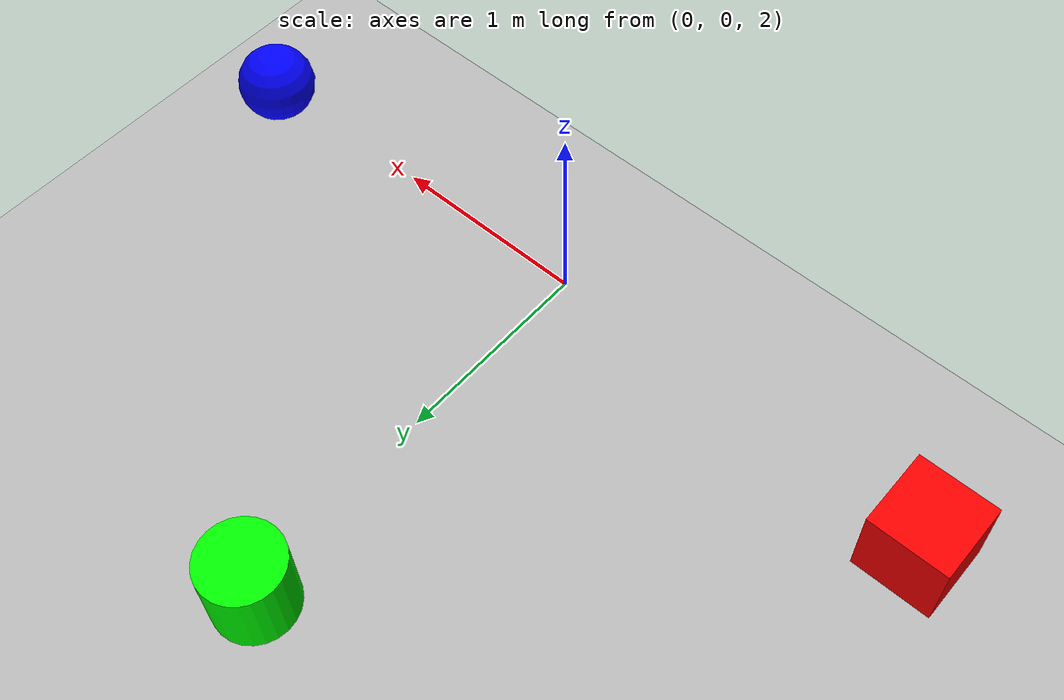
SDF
<?xml version="1.0" ?>
<sdf version="1.7">
  <world name="physics_demo_world">
    <!-- Set gravity -->
    <gravity>0 0 -9.8</gravity>

    <!-- Physics engine configuration -->
    <physics name="ode_physics" default="true" type="ode">
      <max_step_size>0.001</max_step_size>
      <real_time_factor>1.0</real_time_factor>
      <real_time_update_rate>1000.0</real_time_update_rate>
      <ode>
        <solver>
          <type>quick</type>
          <iters>10</iters>
          <sor>1.3</sor>
        </solver>
        <constraints>
          <cfm>0.0</cfm>
          <erp>0.2</erp>
          <contact_max_correcting_vel>100.0</contact_max_correcting_vel>
          <contact_surface_layer>0.001</contact_surface_layer>
        </constraints>
      </ode>
    </physics>

    <!-- Lighting -->
    <light name="sun" type="directional">
      <cast_shadows>true</cast_shadows>
      <pose>0 0 10 0 0 0</pose>
      <diffuse>0.8 0.8 0.8 1</diffuse>
      <specular>0.2 0.2 0.2 1</specular>
      <attenuation>
        <range>1000</range>
        <constant>0.9</constant>
        <linear>0.01</linear>
        <quadratic>0.001</quadratic>
      </attenuation>
      <direction>-0.6 0.4 -0.8</direction>
    </light>

    <!-- Ground plane -->
    <model name="ground_plane">
      <static>true</static>
      <link name="link">
        <collision name="collision">
          <geometry>
            <plane>
              <normal>0 0 1</normal>
              <size>100 100</size>
            </plane>
          </geometry>
          <surface>
            <friction>
              <ode>
                <mu>1.0</mu>
                <mu2>1.0</mu2>
              </ode>
            </friction>
            <bounce>
              <restitution_coefficient>0.0</restitution_coefficient>
              <threshold>100000.0</threshold>
            </bounce>
            <contact>
              <ode>
                <soft_cfm>0</soft_cfm>
                <soft_erp>0.2</soft_erp>
                <kp>1e+13</kp>
                <kd>1</kd>
                <max_vel>0.01</max_vel>
                <min_depth>0</min_depth>
              </ode>
            </contact>
          </surface>
        </collision>
        <visual name="visual">
          <geometry>
            <plane>
              <normal>0 0 1</normal>
              <size>100 100</size>
            </plane>
          </geometry>
          <material>
            <ambient>0.7 0.7 0.7 1</ambient>
            <diffuse>0.7 0.7 0.7 1</diffuse>
            <specular>0.0 0.0 0.0 1</specular>
          </material>
        </visual>
      </link>
    </model>

    <!-- Physics demo objects -->
    <!-- Sphere with low friction -->
    <model name="low_friction_sphere">
      <pose>2 0 2 0 0 0</pose>
      <link name="link">
        <inertial>
          <mass>1.0</mass>
          <inertia>
            <ixx>0.1</ixx>
            <ixy>0.0</ixy>
            <ixz>0.0</ixz>
            <iyy>0.1</iyy>
            <iyz>0.0</iyz>
            <izz>0.1</izz>
          </inertia>
        </inertial>
        <collision name="collision">
          <geometry>
            <sphere>
              <radius>0.2</radius>
            </sphere>
          </geometry>
          <surface>
            <friction>
              <ode>
                <mu>0.1</mu>
                <mu2>0.1</mu2>
              </ode>
            </friction>
          </surface>
        </collision>
        <visual name="visual">
          <geometry>
            <sphere>
              <radius>0.2</radius>
            </sphere>
          </geometry>
          <material>
            <ambient>0.0 0.0 1.0 1</ambient>
            <diffuse>0.0 0.0 1.0 1</diffuse>
          </material>
        </visual>
      </link>
    </model>

    <!-- Box with high friction -->
    <model name="high_friction_box">
      <pose>-2 0 2 0 0 0</pose>
      <link name="link">
        <inertial>
          <mass>2.0</mass>
          <inertia>
            <ixx>0.1667</ixx>
            <ixy>0.0</ixy>
            <ixz>0.0</ixz>
            <iyy>0.1667</iyy>
            <iyz>0.0</iyz>
            <izz>0.1667</izz>
          </inertia>
        </inertial>
        <collision name="collision">
          <geometry>
            <box>
              <size>0.4 0.4 0.4</size>
            </box>
          </geometry>
          <surface>
            <friction>
              <ode>
                <mu>1.5</mu>
                <mu2>1.5</mu2>
              </ode>
            </friction>
          </surface>
        </collision>
        <visual name="visual">
          <geometry>
            <box>
              <size>0.4 0.4 0.4</size>
            </box>
          </geometry>
          <material>
            <ambient>1.0 0.0 0.0 1</ambient>
            <diffuse>1.0 0.0 0.0 1</diffuse>
          </material>
        </visual>
      </link>
    </model>

    <!-- Cylinder with medium restitution -->
    <model name="bouncy_cylinder">
      <pose>0 2 2 0 0 0</pose>
      <link name="link">
        <inertial>
          <mass>1.5</mass>
          <inertia>
            <ixx>0.1125</ixx>
            <ixy>0.0</ixy>
            <ixz>0.0</ixz>
            <iyy>0.1125</iyy>
            <iyz>0.0</iyz>
            <izz>0.15</izz>
          </inertia>
        </inertial>
        <collision name="collision">
          <geometry>
            <cylinder>
              <radius>0.2</radius>
              <length>0.4</length>
            </cylinder>
          </geometry>
          <surface>
            <bounce>
              <restitution_coefficient>0.7</restitution_coefficient>
            </bounce>
          </surface>
        </collision>
        <visual name="visual">
          <geometry>
            <cylinder>
              <radius>0.2</radius>
              <length>0.4</length>
            </cylinder>
          </geometry>
          <material>
            <ambient>0.0 1.0 0.0 1</ambient>
            <diffuse>0.0 1.0 0.0 1</diffuse>
          </material>
        </visual>
      </link>
    </model>

  </world>
</sdf>
